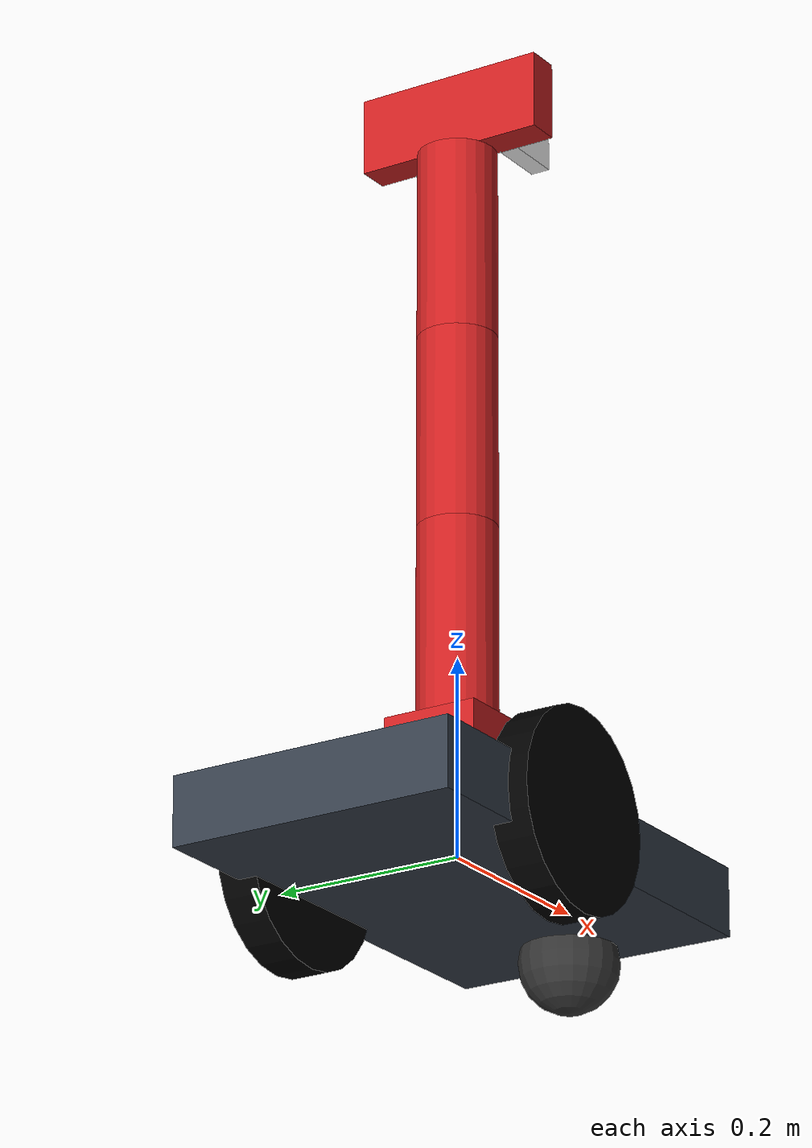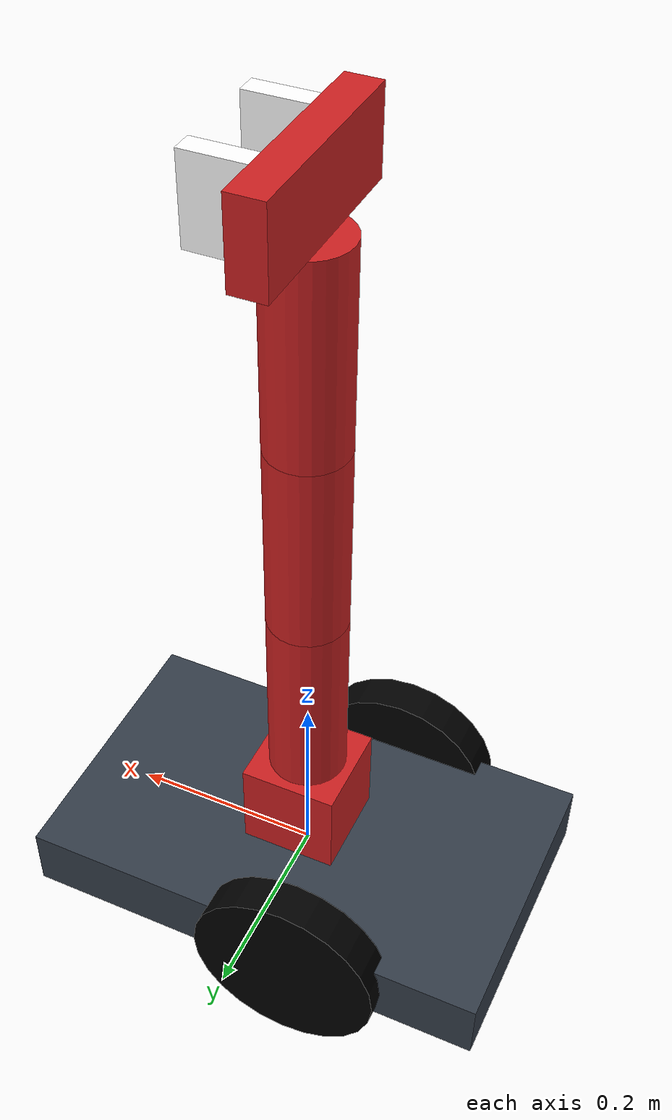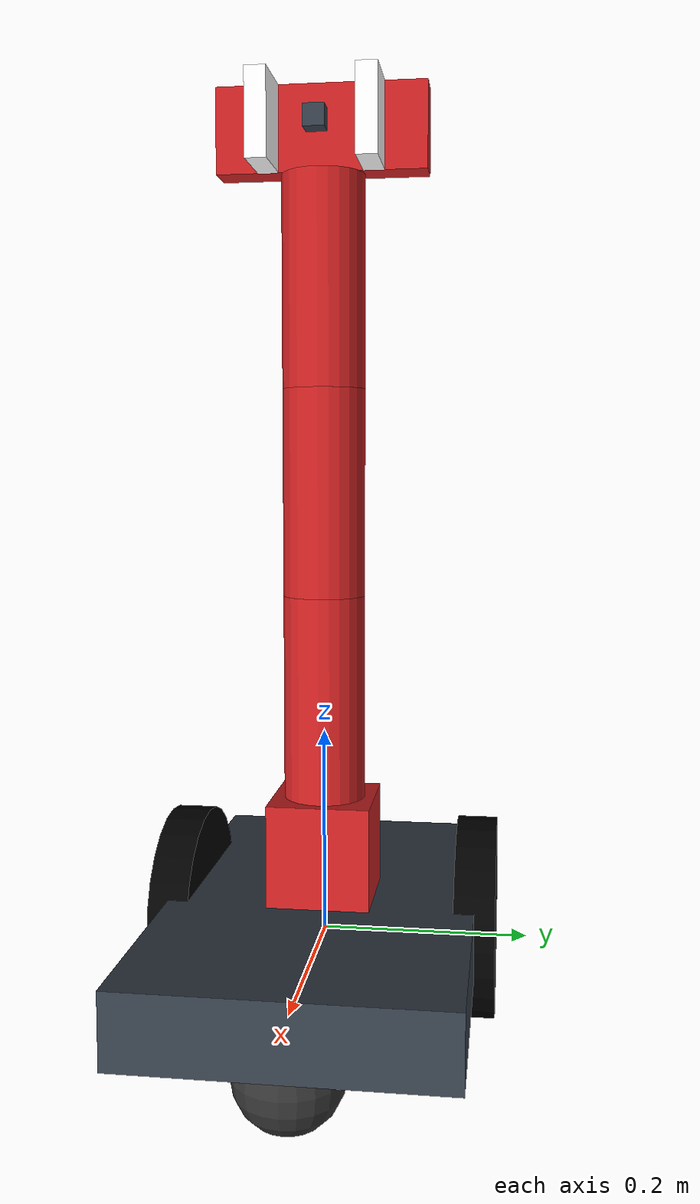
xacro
<?xml version="1.0" ?>
<robot name="mob_manipulator" xmlns:xacro="http://www.ros.org/wiki/xacro">

<!-- ========== MATERIAL DEFINITIONS ========== -->
<material name="black">
  <color rgba="0.0 0.0 0.0 1.0"/>
</material>
<material name="blue">
  <color rgba="0.203125 0.23828125 0.28515625 1.0"/>
</material>
<material name="green">
  <color rgba="0.0 0.8 0.0 1.0"/>
</material>
<material name="grey">
  <color rgba="0.2 0.2 0.2 1.0"/>
</material>
<material name="orange">
  <color rgba="1.0 0.423529411765 0.0392156862745 1.0"/>
</material>
<material name="brown">
  <color rgba="0.870588235294 0.811764705882 0.764705882353 1.0"/>
</material>
<material name="red">
  <color rgba="0.80078125 0.12890625 0.1328125 1.0"/>
</material>
<material name="white">
  <color rgba="1.0 1.0 1.0 1.0"/>
</material>

<!-- ========== INERTIA MACROS ========== -->
<xacro:macro name="cylinder_inertia" params="mass r l">
  <inertia
    ixx="${mass * (3*r*r + l*l) / 12}"
    iyy="${mass * (3*r*r + l*l) / 12}"
    izz="${mass * r*r / 2}"
    ixy="0" ixz="0" iyz="0"/>
</xacro:macro>

<!-- ========== ARM PROPERTIES ========== -->
<xacro:property name="arm_01_len" value="0.2" />
<xacro:property name="arm_01_mass" value="0.025" />
<xacro:property name="arm_02_len" value="0.2" />
<xacro:property name="arm_02_mass" value="0.025" />
<xacro:property name="arm_03_len" value="0.2" />
<xacro:property name="arm_03_mass" value="0.025" />
<xacro:property name="arm_04_len" value="0.25" />
<xacro:property name="arm_04_mass" value="0.025" />
<xacro:property name="offset" value="0" />

<!-- ========== MOBILE BASE ========== -->

<!-- Root link (dummy) -->
<link name="root_link">
  <origin rpy="0 0 0" xyz="0 0 0"/>
</link>

<!-- Base link (chassis) -->
<joint name="root_joint" type="fixed">
  <parent link="root_link"/>
  <child link="base_link"/>
  <origin rpy="0 0 0" xyz="0 0 0"/>
</joint>

<link name="base_link">
  <pose>0 0 0.1 0 0 0</pose>
  <inertial>
    <mass value="5"/>
    <origin rpy="0 0 0" xyz="0 0 0.1"/>
    <inertia ixx="0.0395416666667" ixy="0" ixz="0" iyy="0.106208333333" iyz="0" izz="0.106208333333"/>
  </inertial>

  <!-- Chassis collision and visual -->
  <collision name="collision_chassis">
    <origin rpy="0 0 0" xyz="0 0 0"/>
    <geometry>
      <box size="0.5 0.3 0.07"/>
    </geometry>
  </collision>

  <visual>
    <origin rpy="0 0 0" xyz="0 0 0"/>
    <geometry>
      <box size="0.5 0.3 0.07"/>
    </geometry>
    <material name="blue"/>
  </visual>

  <!-- Front caster wheel -->
  <collision name="caster_front_collision">
    <origin rpy="0 0 0" xyz="0.2 0 -0.05"/>
    <geometry>
      <sphere radius="0.05"/>
    </geometry>
  </collision>

  <visual name="caster_front_visual">
    <origin rpy="0 0 0" xyz="0.2 0 -0.05"/>
    <geometry>
      <sphere radius="0.05"/>
    </geometry>
    <material name="grey"/>
  </visual>
</link>

<!-- Right wheel -->
<link name="link_right_wheel">
  <inertial>
    <mass value="0.2"/>
    <origin rpy="0 1.5707 1.5707" xyz="0 0 0"/>
    <inertia ixx="0.000526666666667" ixy="0" ixz="0" iyy="0.000526666666667" iyz="0" izz="0.001"/>
  </inertial>

  <collision name="link_right_wheel_collision">
    <origin rpy="0 1.5707 1.5707" xyz="0 0 0"/>
    <geometry>
      <cylinder length="0.04" radius="0.1"/>
    </geometry>
  </collision>

  <visual name="link_right_wheel_visual">
    <origin rpy="0 1.5707 1.5707" xyz="0 0 0"/>
    <geometry>
      <cylinder length="0.04" radius="0.1"/>
    </geometry>
    <material name="black"/>
  </visual>
</link>

<joint name="joint_right_wheel" type="continuous">
  <parent link="base_link"/>
  <child link="link_right_wheel"/>
  <origin rpy="0 0 0" xyz="-0.05 0.15 0"/>
  <axis rpy="0 0 0" xyz="0 1 0"/>
  <limit effort="10000" velocity="1000"/>
</joint>

<!-- Left wheel -->
<link name="link_left_wheel">
  <inertial>
    <mass value="0.2"/>
    <origin rpy="0 1.5707 1.5707" xyz="0 0 0"/>
    <inertia ixx="0.000526666666667" ixy="0" ixz="0" iyy="0.000526666666667" iyz="0" izz="0.001"/>
  </inertial>

  <collision name="link_left_wheel_collision">
    <origin rpy="0 1.5707 1.5707" xyz="0 0 0"/>
    <geometry>
      <cylinder length="0.04" radius="0.1"/>
    </geometry>
  </collision>

  <visual name="link_left_wheel_visual">
    <origin rpy="0 1.5707 1.5707" xyz="0 0 0"/>
    <geometry>
      <cylinder length="0.04" radius="0.1"/>
    </geometry>
    <material name="black"/>
  </visual>
</link>

<joint name="joint_left_wheel" type="continuous">
  <parent link="base_link"/>
  <child link="link_left_wheel"/>
  <origin rpy="0 0 0" xyz="-0.05 -0.15 0"/>
  <axis rpy="0 0 0" xyz="0 1 0"/>
  <limit effort="10000" velocity="1000"/>
</joint>

<!-- ========== ROBOT ARM MOUNTED ON BASE ========== -->

<!-- Arm base mounted on top of mobile base -->
<joint name="arm_base_to_base" type="fixed">
  <parent link="base_link"/>
  <child link="arm_base_link"/>
  <origin rpy="0 0 0" xyz="0 0 0.085"/>
</joint>

<link name="arm_base_link">
  <inertial>
    <mass value="0.1"/>
    <origin xyz="0 0 0" rpy="0 0 0" />
    <inertia
      ixx="0.0000416666667" iyy="0.0000416666667" izz="0.0000416666667"
      iyz="0" ixy="0" ixz="0" />
  </inertial>

  <collision>
    <origin xyz="0 0 0" rpy="0 0 0"/>
    <geometry>
      <box size="0.1 0.1 0.1"/>
    </geometry>
  </collision>

  <visual>
    <origin xyz="0 0 0" rpy="0 0 0"/>
    <geometry>
      <box size="0.1 0.1 0.1"/>
    </geometry>
    <material name="red" />
  </visual>
</link>

<!-- First link of the manipulator -->
<joint name="arm_joint_01" type="revolute">
  <parent link="arm_base_link"/>
  <child link="arm_link_01"/>
  <origin rpy="0 0 0" xyz="0 0 ${0.05 + offset}"/>
  <axis xyz="0 0 1"/>
  <limit effort="1000.0" lower="-3.12" upper="3.139" velocity="5"/>
</joint>

<link name="arm_link_01">
  <inertial>
    <origin xyz="0 0 ${arm_01_len/2}" rpy="0 0 0" />
    <mass value="${arm_01_mass}"/>
    <xacro:cylinder_inertia mass="${arm_01_mass}" r="0.04" l="${arm_01_len}" />
  </inertial>

  <collision>
    <origin xyz="0 0 ${arm_01_len/2}" rpy="0 0 0"/>
    <geometry>
      <cylinder radius="0.04" length="${arm_01_len}"/>
    </geometry>
  </collision>

  <visual>
    <origin xyz="0 0 ${arm_01_len/2}" rpy="0 0 0"/>
    <geometry>
      <cylinder radius="0.04" length="${arm_01_len}"/>
    </geometry>
    <material name="red" />
  </visual>
</link>

<!-- Second link of the manipulator -->
<joint name="arm_joint_02" type="revolute">
  <parent link="arm_link_01"/>
  <child link="arm_link_02"/>
  <origin rpy="0 0 0" xyz="0 0 ${arm_01_len + offset}"/>
  <axis xyz="0 1 0"/>
  <limit effort="1000.0" lower="-1.8" upper="1.8" velocity="5"/>
</joint>

<link name="arm_link_02">
  <inertial>
    <origin xyz="0 0 ${arm_02_len/2}" rpy="0 0 0" />
    <mass value="${arm_02_mass}"/>
    <xacro:cylinder_inertia mass="${arm_02_mass}" r="0.04" l="${arm_02_len}" />
  </inertial>

  <collision>
    <origin xyz="0 0 ${arm_02_len/2}" rpy="0 0 0"/>
    <geometry>
      <cylinder radius="0.04" length="${arm_02_len}"/>
    </geometry>
  </collision>

  <visual>
    <origin xyz="0 0 ${arm_02_len/2}" rpy="0 0 0"/>
    <geometry>
      <cylinder radius="0.04" length="${arm_02_len}"/>
    </geometry>
    <material name="red" />
  </visual>
</link>

<!-- Third link of the manipulator -->
<joint name="arm_joint_03" type="revolute">
  <parent link="arm_link_02"/>
  <child link="arm_link_03"/>
  <origin rpy="0 0 0" xyz="0 0 ${arm_02_len + offset}"/>
  <axis xyz="0 1 0"/>
  <limit effort="1000.0" lower="-1.8" upper="1.8" velocity="5"/>
</joint>

<link name="arm_link_03">
  <inertial>
    <origin xyz="0 0 ${arm_03_len/2}" rpy="0 0 0" />
    <mass value="${arm_03_mass}"/>
    <xacro:cylinder_inertia mass="${arm_03_mass}" r="0.04" l="${arm_03_len}" />
  </inertial>

  <collision>
    <origin xyz="0 0 ${arm_03_len/2}" rpy="0 0 0"/>
    <geometry>
      <cylinder radius="0.04" length="${arm_03_len}"/>
    </geometry>
  </collision>

  <visual>
    <origin xyz="0 0 ${arm_03_len/2}" rpy="0 0 0"/>
    <geometry>
      <cylinder radius="0.04" length="${arm_03_len}"/>
    </geometry>
    <material name="red" />
  </visual>
</link>

<!-- Last link of the manipulator, base gripper -->
<joint name="arm_joint_04" type="revolute">
  <parent link="arm_link_03"/>
  <child link="arm_link_04"/>
  <origin rpy="0 0 0" xyz="0 0 ${arm_03_len + offset}"/>
  <axis xyz="0 1 0"/>
  <limit effort="10000.0" lower="-1.8" upper="1.8" velocity="5"/>
</joint>

<link name="arm_link_04">
  <inertial>
    <origin xyz="0 0 0.04" rpy="0 0 0" />
    <mass value="${arm_04_mass}"/>
    <inertia
      ixx="0.000010279" iyy="0.000010279" izz="0.000007225"
      ixy="0" ixz="0" iyz="0"/>
  </inertial>

  <collision>
    <origin xyz="0 0 0.04" rpy="0 0 0"/>
    <geometry>
      <box size="0.034 0.2 0.08"/>
    </geometry>
  </collision>

  <visual>
    <origin xyz="0 0 0.04" rpy="0 0 0"/>
    <geometry>
      <box size="0.034 0.2 0.08"/>
    </geometry>
    <material name="red" />
  </visual>
</link>

<!-- Right gripper -->
<joint name="right_grip_joint" type="prismatic">
  <parent link="arm_link_04"/>
  <child link="right_grip_link"/>
  <origin rpy="0 0 0" xyz="${0.015 + 0.03} 0.05 0.04"/>
  <axis xyz="0 1 0"/>
  <limit effort="1000.0" lower="-0.04" upper="0.035" velocity="6.5"/>
</joint>

<link name="right_grip_link">
  <inertial>
    <mass value="0.01"/>
    <origin xyz="0 0 0" rpy="0 0 0" />
    <inertia ixx="0.000010279" ixy="0" ixz="0" iyy="0.000010279" iyz="0" izz="0.000007225"/>
  </inertial>

  <collision>
    <origin rpy="0 0 0" xyz="0 0 0"/>
    <geometry>
      <box size="0.06 0.02 0.08"/>
    </geometry>
  </collision>

  <visual>
    <origin rpy="0 0 0" xyz="0 0 0"/>
    <geometry>
      <box size="0.06 0.02 0.08"/>
    </geometry>
    <material name="white" />
  </visual>
</link>

<!-- Left gripper -->
<joint name="left_grip_joint" type="prismatic">
  <parent link="arm_link_04"/>
  <child link="left_grip_link"/>
  <origin rpy="0 0 0" xyz="${0.015 + 0.03} -0.05 0.04"/>
  <axis xyz="0 1 0"/>
  <limit effort="1000.0" upper="0.04" lower="-0.035" velocity="6.5"/>
</joint>

<link name="left_grip_link">
  <inertial>
    <mass value="0.01"/>
    <origin xyz="0 0 0" rpy="0 0 0" />
    <inertia ixx="0.000010279" ixy="0" ixz="0" iyy="0.000010279" iyz="0" izz="0.000007225"/>
  </inertial>

  <collision>
    <origin rpy="0 0 0" xyz="0 0 0"/>
    <geometry>
      <box size="0.06 0.02 0.08"/>
    </geometry>
  </collision>

  <visual>
    <origin rpy="0 0 0" xyz="0 0 0"/>
    <geometry>
      <box size="0.06 0.02 0.08"/>
    </geometry>
    <material name="white" />
  </visual>
</link>

<joint name="camera_joint" type="fixed">
  <parent link="arm_link_04"/>
  <child link="camera_link"/>
  <origin xyz="0.05 0 0.04" rpy="0 0 0"/>
</joint>
<link name="camera_link">
  <visual>
    <geometry>
      <box size="0.02 0.02 0.02"/>
    </geometry>
    <material name="blue"/>
  </visual>
  <collision>
    <geometry>
      <box size="0.02 0.02 0.02"/>
    </geometry>
  </collision>
  <inertial>
    <mass value="0.01"/>
    <inertia ixx="0.0001" ixy="0" ixz="0" iyy="0.0001" iyz="0" izz="0.0001"/>
  </inertial>
</link>

<!-- ========== INCLUDE GAZEBO PLUGINS ========== -->
<!-- Updated include path to point directly to the local robot.gazebo file -->
<xacro:include filename="/workspace/robot.gazebo"/>

</robot>
